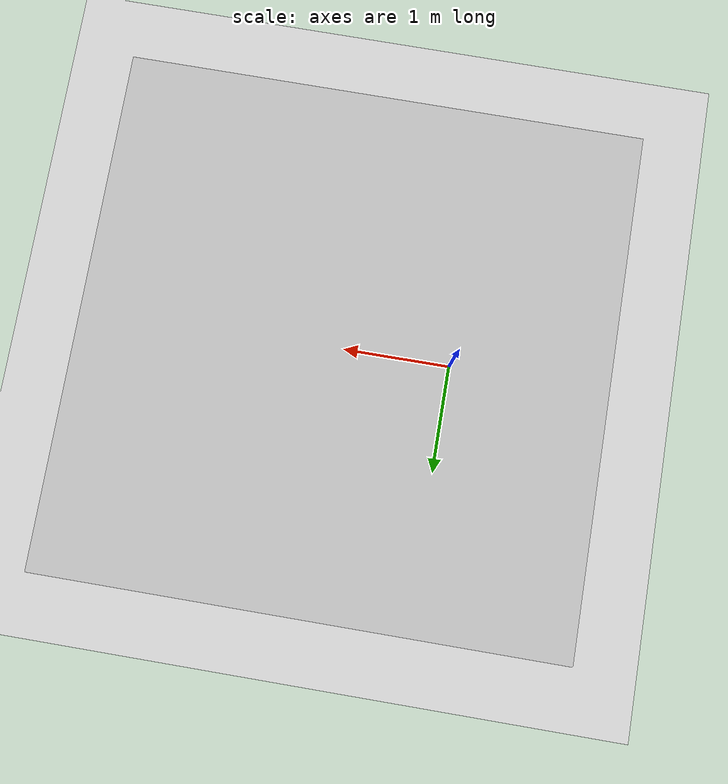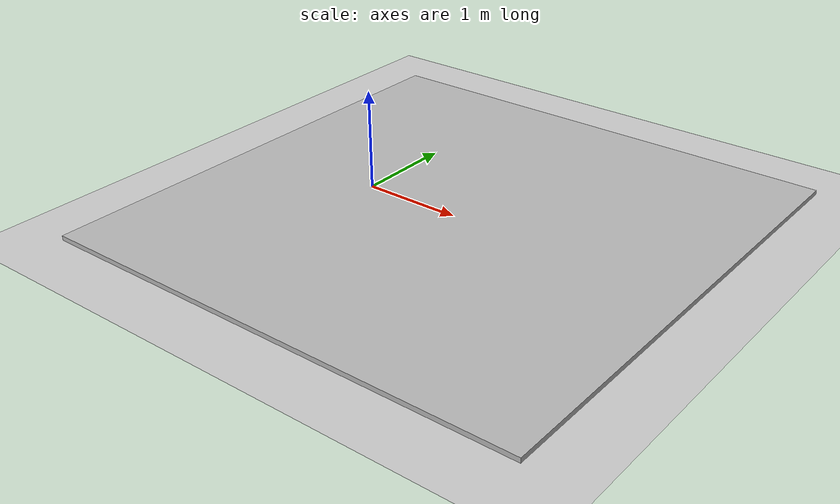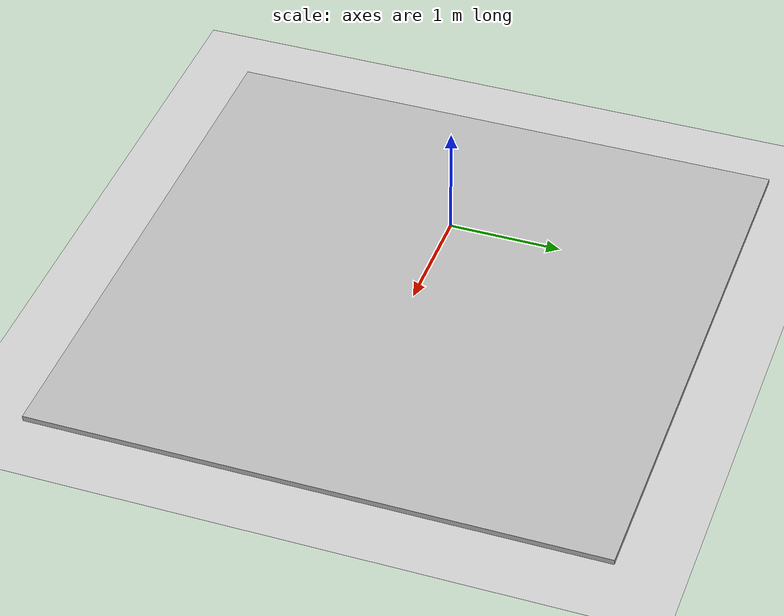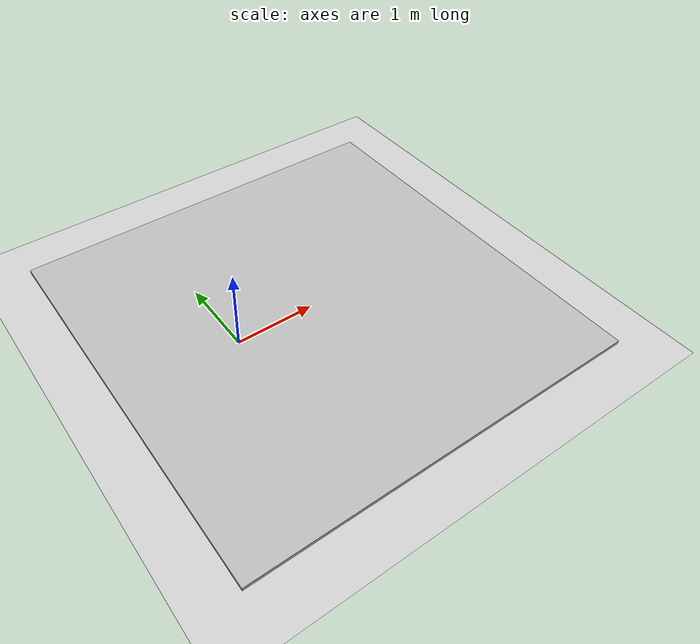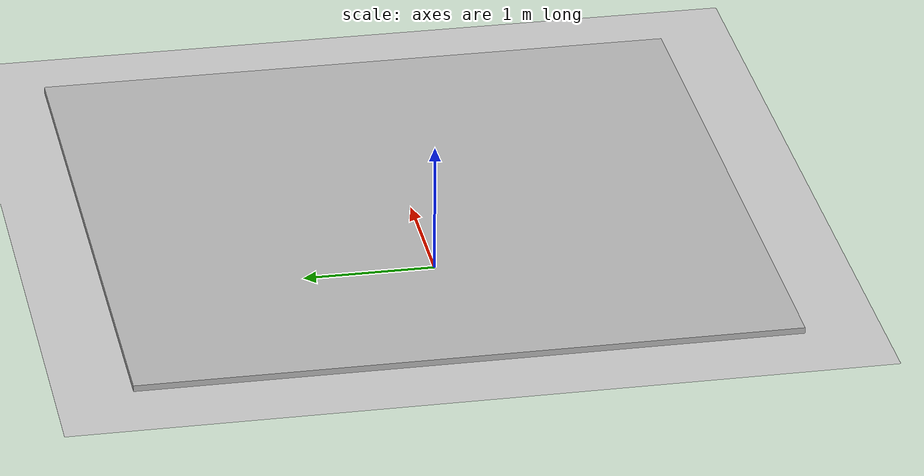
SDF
<?xml version="1.0" ?>

<sdf version="1.5">
    <world name="default">
        <!-- Target real time factor is the product of max_step_size and real_time_update_rate -->
        <!-- Negative real_time_update_rate means that Gazebo will run as fast as possible -->
        <physics type="ode">
            <type>world</type>
            <max_step_size>0.001</max_step_size>
            <real_time_update_rate>1000</real_time_update_rate>
            <iters>500</iters>
        </physics>
        <!-- A global light source -->
        <include>
            <uri>model://sun</uri>
        </include>
        <!-- A ground plane -->
        <include>
            <uri>model://ground_plane</uri>
        </include>
        <!-- A fixed box -->
        <model name="fixed_box">
            <static>true</static>
            <link name="link">
                <collision name="collision">
                    <geometry>
                        <box>
                            <size>5 5 0.08</size>
                        </box>
                    </geometry>
                </collision>
                <visual name="visual">
                    <geometry>
                        <box>
                            <size>5 5 0.08</size>
                        </box>
                    </geometry>
                </visual>
            </link>
            <pose>1 0 0 0 0 0</pose>
        </model>
    </world>
</sdf>
